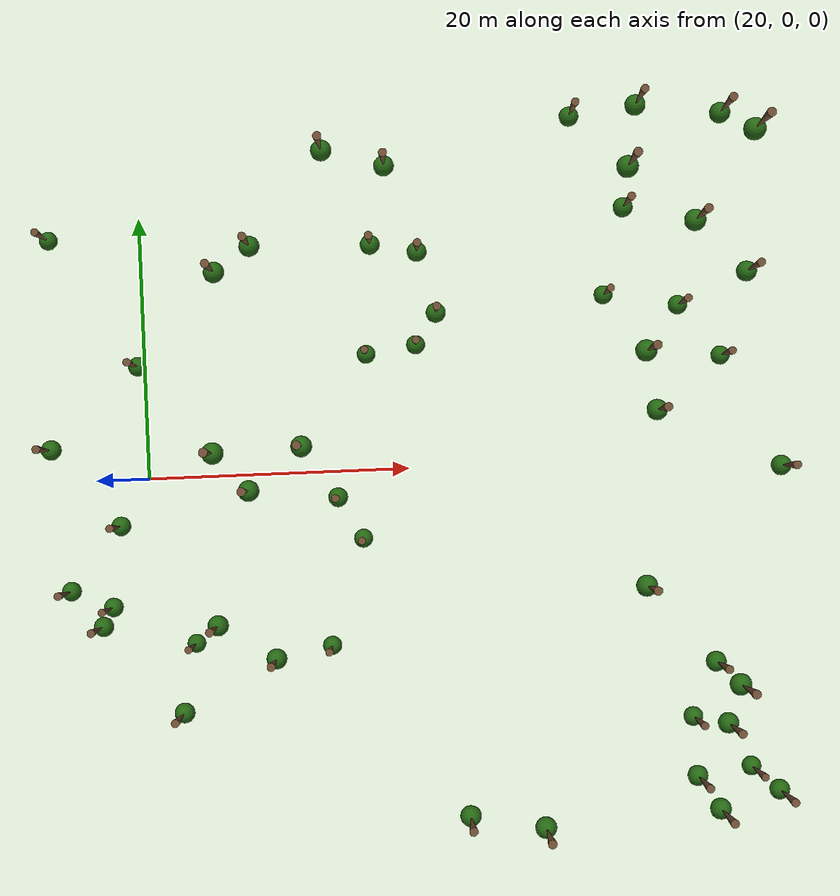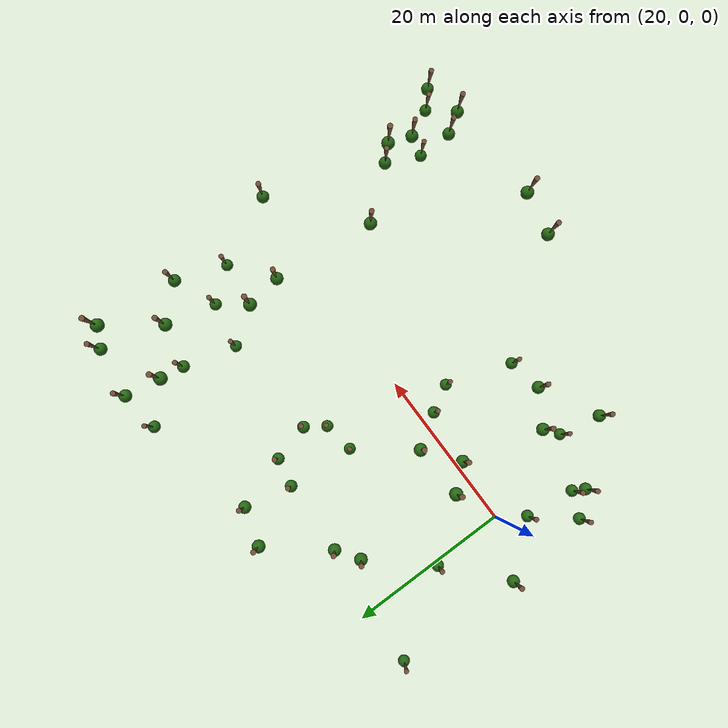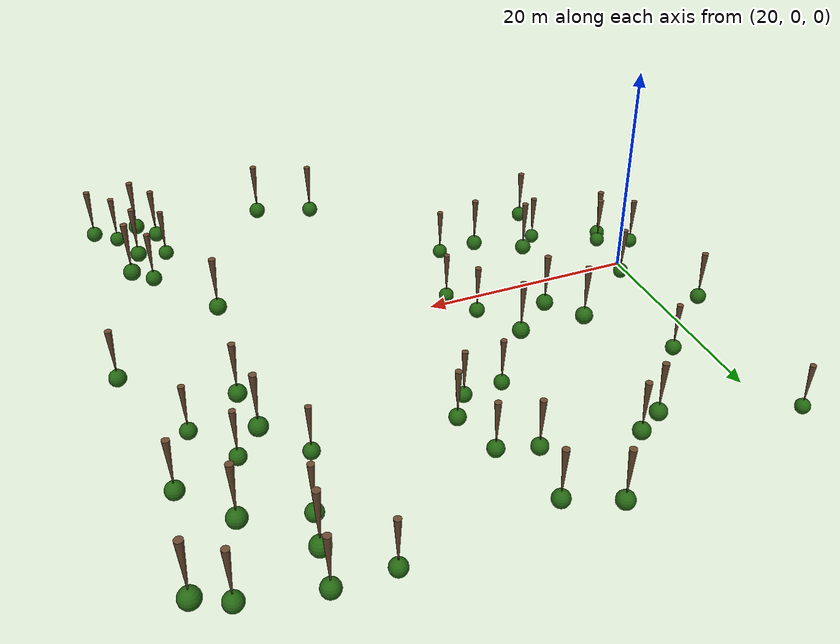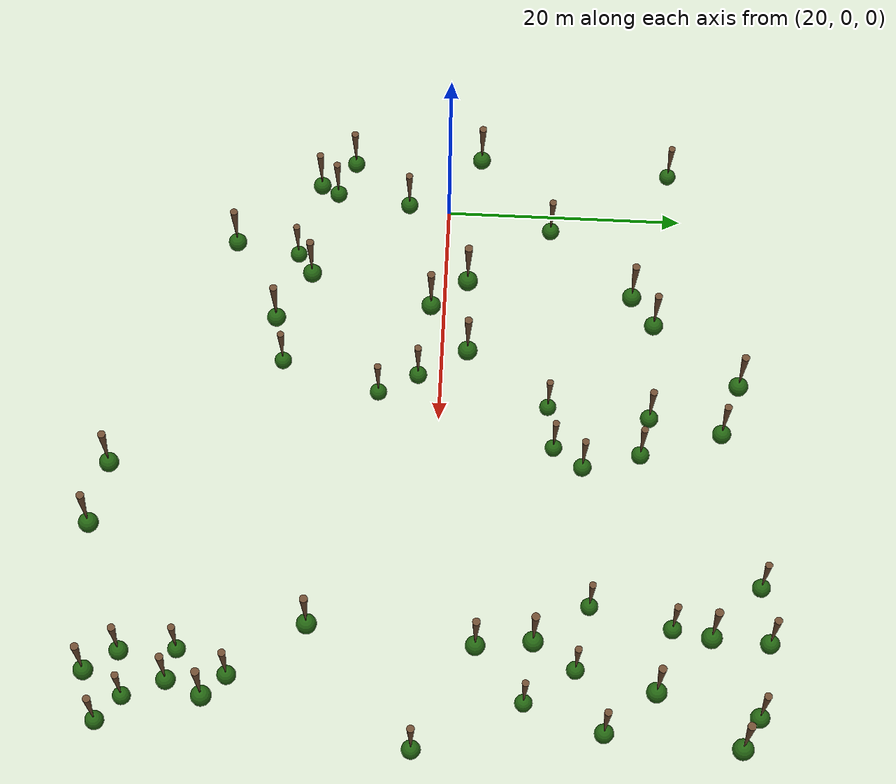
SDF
<sdf version="1.10">
 <model name="lehrforst_trees">
  <static>true</static>
  <link name="tree_0231">
   <visual name="tree_0231_trunk">
    <pose>24.409 1.859 -1.091 3.14159 0 0</pose>
    <geometry><cone><radius>0.352</radius><length>5.632</length></cone></geometry>
    <material>
     <ambient>0.42 0.29 0.19 1</ambient>
     <diffuse>0.42 0.29 0.19 1</diffuse>
     <specular>0.42 0.29 0.19 1</specular>
    </material>
   </visual>
   <visual name="tree_0231_leaves">
    <pose>24.409 1.859 -3.907 3.14159 0 0</pose>
    <geometry><sphere><radius>0.880</radius></sphere></geometry>
    <material>
     <ambient>0.14 0.40 0.07 1</ambient>
     <diffuse>0.14 0.40 0.07 1</diffuse>
     <specular>0.14 0.40 0.07 1</specular>
    </material>
   </visual>
   <collision name="tree_0231_collision">
    <pose>24.409 1.859 -1.091 3.14159 0 0</pose>
    <geometry><cone><radius>0.352</radius><length>5.632</length></cone></geometry>
   </collision>
  </link>
  <link name="tree_0234">
   <visual name="tree_0234_trunk">
    <pose>67.581 24.981 2.8 3.14159 0 0</pose>
    <geometry><cone><radius>0.348</radius><length>5.568</length></cone></geometry>
    <material>
     <ambient>0.42 0.29 0.19 1</ambient>
     <diffuse>0.42 0.29 0.19 1</diffuse>
     <specular>0.42 0.29 0.19 1</specular>
    </material>
   </visual>
   <visual name="tree_0234_leaves">
    <pose>67.581 24.981 0.016000000000000014 3.14159 0 0</pose>
    <geometry><sphere><radius>0.870</radius></sphere></geometry>
    <material>
     <ambient>0.14 0.40 0.07 1</ambient>
     <diffuse>0.14 0.40 0.07 1</diffuse>
     <specular>0.14 0.40 0.07 1</specular>
    </material>
   </visual>
   <collision name="tree_0234_collision">
    <pose>67.581 24.981 2.8 3.14159 0 0</pose>
    <geometry><cone><radius>0.348</radius><length>5.568</length></cone></geometry>
   </collision>
  </link>
  <link name="tree_0238">
   <visual name="tree_0238_trunk">
    <pose>57.901 22.753 1.447 3.14159 0 0</pose>
    <geometry><cone><radius>0.348</radius><length>5.568</length></cone></geometry>
    <material>
     <ambient>0.42 0.29 0.19 1</ambient>
     <diffuse>0.42 0.29 0.19 1</diffuse>
     <specular>0.42 0.29 0.19 1</specular>
    </material>
   </visual>
   <visual name="tree_0238_leaves">
    <pose>57.901 22.753 -1.3369999999999997 3.14159 0 0</pose>
    <geometry><sphere><radius>0.870</radius></sphere></geometry>
    <material>
     <ambient>0.14 0.40 0.07 1</ambient>
     <diffuse>0.14 0.40 0.07 1</diffuse>
     <specular>0.14 0.40 0.07 1</specular>
    </material>
   </visual>
   <collision name="tree_0238_collision">
    <pose>57.901 22.753 1.447 3.14159 0 0</pose>
    <geometry><cone><radius>0.348</radius><length>5.568</length></cone></geometry>
   </collision>
  </link>
  <link name="tree_0250">
   <visual name="tree_0250_trunk">
    <pose>58.799 8.423 1.165 3.14159 0 0</pose>
    <geometry><cone><radius>0.342</radius><length>5.472</length></cone></geometry>
    <material>
     <ambient>0.42 0.29 0.19 1</ambient>
     <diffuse>0.42 0.29 0.19 1</diffuse>
     <specular>0.42 0.29 0.19 1</specular>
    </material>
   </visual>
   <visual name="tree_0250_leaves">
    <pose>58.799 8.423 -1.5710000000000002 3.14159 0 0</pose>
    <geometry><sphere><radius>0.855</radius></sphere></geometry>
    <material>
     <ambient>0.14 0.40 0.07 1</ambient>
     <diffuse>0.14 0.40 0.07 1</diffuse>
     <specular>0.14 0.40 0.07 1</specular>
    </material>
   </visual>
   <collision name="tree_0250_collision">
    <pose>58.799 8.423 1.165 3.14159 0 0</pose>
    <geometry><cone><radius>0.342</radius><length>5.472</length></cone></geometry>
   </collision>
  </link>
  <link name="tree_0252">
   <visual name="tree_0252_trunk">
    <pose>49.555 -28.673 -0.0860000000000001 3.14159 0 0</pose>
    <geometry><cone><radius>0.342</radius><length>5.472</length></cone></geometry>
    <material>
     <ambient>0.42 0.29 0.19 1</ambient>
     <diffuse>0.42 0.29 0.19 1</diffuse>
     <specular>0.42 0.29 0.19 1</specular>
    </material>
   </visual>
   <visual name="tree_0252_leaves">
    <pose>49.555 -28.673 -2.8220000000000005 3.14159 0 0</pose>
    <geometry><sphere><radius>0.855</radius></sphere></geometry>
    <material>
     <ambient>0.14 0.40 0.07 1</ambient>
     <diffuse>0.14 0.40 0.07 1</diffuse>
     <specular>0.14 0.40 0.07 1</specular>
    </material>
   </visual>
   <collision name="tree_0252_collision">
    <pose>49.555 -28.673 -0.0860000000000001 3.14159 0 0</pose>
    <geometry><cone><radius>0.342</radius><length>5.472</length></cone></geometry>
   </collision>
  </link>
  <link name="tree_0253">
   <visual name="tree_0253_trunk">
    <pose>64.9 -17.749 1.922 3.14159 0 0</pose>
    <geometry><cone><radius>0.342</radius><length>5.472</length></cone></geometry>
    <material>
     <ambient>0.42 0.29 0.19 1</ambient>
     <diffuse>0.42 0.29 0.19 1</diffuse>
     <specular>0.42 0.29 0.19 1</specular>
    </material>
   </visual>
   <visual name="tree_0253_leaves">
    <pose>64.9 -17.749 -0.8140000000000003 3.14159 0 0</pose>
    <geometry><sphere><radius>0.855</radius></sphere></geometry>
    <material>
     <ambient>0.14 0.40 0.07 1</ambient>
     <diffuse>0.14 0.40 0.07 1</diffuse>
     <specular>0.14 0.40 0.07 1</specular>
    </material>
   </visual>
   <collision name="tree_0253_collision">
    <pose>64.9 -17.749 1.922 3.14159 0 0</pose>
    <geometry><cone><radius>0.342</radius><length>5.472</length></cone></geometry>
   </collision>
  </link>
  <link name="tree_0259">
   <visual name="tree_0259_trunk">
    <pose>31.504 2.118 -0.859 3.14159 0 0</pose>
    <geometry><cone><radius>0.340</radius><length>5.440</length></cone></geometry>
    <material>
     <ambient>0.42 0.29 0.19 1</ambient>
     <diffuse>0.42 0.29 0.19 1</diffuse>
     <specular>0.42 0.29 0.19 1</specular>
    </material>
   </visual>
   <visual name="tree_0259_leaves">
    <pose>31.504 2.118 -3.579 3.14159 0 0</pose>
    <geometry><sphere><radius>0.850</radius></sphere></geometry>
    <material>
     <ambient>0.14 0.40 0.07 1</ambient>
     <diffuse>0.14 0.40 0.07 1</diffuse>
     <specular>0.14 0.40 0.07 1</specular>
    </material>
   </visual>
   <collision name="tree_0259_collision">
    <pose>31.504 2.118 -0.859 3.14159 0 0</pose>
    <geometry><cone><radius>0.340</radius><length>5.440</length></cone></geometry>
   </collision>
  </link>
  <link name="tree_0262">
   <visual name="tree_0262_trunk">
    <pose>62.89 18.31 1.819 3.14159 0 0</pose>
    <geometry><cone><radius>0.338</radius><length>5.408</length></cone></geometry>
    <material>
     <ambient>0.42 0.29 0.19 1</ambient>
     <diffuse>0.42 0.29 0.19 1</diffuse>
     <specular>0.42 0.29 0.19 1</specular>
    </material>
   </visual>
   <visual name="tree_0262_leaves">
    <pose>62.89 18.31 -0.8850000000000002 3.14159 0 0</pose>
    <geometry><sphere><radius>0.845</radius></sphere></geometry>
    <material>
     <ambient>0.14 0.40 0.07 1</ambient>
     <diffuse>0.14 0.40 0.07 1</diffuse>
     <specular>0.14 0.40 0.07 1</specular>
    </material>
   </visual>
   <collision name="tree_0262_collision">
    <pose>62.89 18.31 1.819 3.14159 0 0</pose>
    <geometry><cone><radius>0.338</radius><length>5.408</length></cone></geometry>
   </collision>
  </link>
  <link name="tree_0263">
   <visual name="tree_0263_trunk">
    <pose>27.186 -1.236 -0.91 3.14159 0 0</pose>
    <geometry><cone><radius>0.338</radius><length>5.408</length></cone></geometry>
    <material>
     <ambient>0.42 0.29 0.19 1</ambient>
     <diffuse>0.42 0.29 0.19 1</diffuse>
     <specular>0.42 0.29 0.19 1</specular>
    </material>
   </visual>
   <visual name="tree_0263_leaves">
    <pose>27.186 -1.236 -3.6140000000000003 3.14159 0 0</pose>
    <geometry><sphere><radius>0.845</radius></sphere></geometry>
    <material>
     <ambient>0.14 0.40 0.07 1</ambient>
     <diffuse>0.14 0.40 0.07 1</diffuse>
     <specular>0.14 0.40 0.07 1</specular>
    </material>
   </visual>
   <collision name="tree_0263_collision">
    <pose>27.186 -1.236 -0.91 3.14159 0 0</pose>
    <geometry><cone><radius>0.338</radius><length>5.408</length></cone></geometry>
   </collision>
  </link>
  <link name="tree_0265">
   <visual name="tree_0265_trunk">
    <pose>58.102 -9.891 1.034 3.14159 0 0</pose>
    <geometry><cone><radius>0.338</radius><length>5.408</length></cone></geometry>
    <material>
     <ambient>0.42 0.29 0.19 1</ambient>
     <diffuse>0.42 0.29 0.19 1</diffuse>
     <specular>0.42 0.29 0.19 1</specular>
    </material>
   </visual>
   <visual name="tree_0265_leaves">
    <pose>58.102 -9.891 -1.6700000000000002 3.14159 0 0</pose>
    <geometry><sphere><radius>0.845</radius></sphere></geometry>
    <material>
     <ambient>0.14 0.40 0.07 1</ambient>
     <diffuse>0.14 0.40 0.07 1</diffuse>
     <specular>0.14 0.40 0.07 1</specular>
    </material>
   </visual>
   <collision name="tree_0265_collision">
    <pose>58.102 -9.891 1.034 3.14159 0 0</pose>
    <geometry><cone><radius>0.338</radius><length>5.408</length></cone></geometry>
   </collision>
  </link>
  <link name="tree_0270">
   <visual name="tree_0270_trunk">
    <pose>25.022 16.303 -1.87 3.14159 0 0</pose>
    <geometry><cone><radius>0.336</radius><length>5.376</length></cone></geometry>
    <material>
     <ambient>0.42 0.29 0.19 1</ambient>
     <diffuse>0.42 0.29 0.19 1</diffuse>
     <specular>0.42 0.29 0.19 1</specular>
    </material>
   </visual>
   <visual name="tree_0270_leaves">
    <pose>25.022 16.303 -4.558 3.14159 0 0</pose>
    <geometry><sphere><radius>0.840</radius></sphere></geometry>
    <material>
     <ambient>0.14 0.40 0.07 1</ambient>
     <diffuse>0.14 0.40 0.07 1</diffuse>
     <specular>0.14 0.40 0.07 1</specular>
    </material>
   </visual>
   <collision name="tree_0270_collision">
    <pose>25.022 16.303 -1.87 3.14159 0 0</pose>
    <geometry><cone><radius>0.336</radius><length>5.376</length></cone></geometry>
   </collision>
  </link>
  <link name="tree_0271">
   <visual name="tree_0271_trunk">
    <pose>43.701 -27.643 -0.687 3.14159 0 0</pose>
    <geometry><cone><radius>0.336</radius><length>5.376</length></cone></geometry>
    <material>
     <ambient>0.42 0.29 0.19 1</ambient>
     <diffuse>0.42 0.29 0.19 1</diffuse>
     <specular>0.42 0.29 0.19 1</specular>
    </material>
   </visual>
   <visual name="tree_0271_leaves">
    <pose>43.701 -27.643 -3.375 3.14159 0 0</pose>
    <geometry><sphere><radius>0.840</radius></sphere></geometry>
    <material>
     <ambient>0.14 0.40 0.07 1</ambient>
     <diffuse>0.14 0.40 0.07 1</diffuse>
     <specular>0.14 0.40 0.07 1</specular>
    </material>
   </visual>
   <collision name="tree_0271_collision">
    <pose>43.701 -27.643 -0.687 3.14159 0 0</pose>
    <geometry><cone><radius>0.336</radius><length>5.376</length></cone></geometry>
   </collision>
  </link>
  <link name="tree_0273">
   <visual name="tree_0273_trunk">
    <pose>34.035 25.412 -0.66 3.14159 0 0</pose>
    <geometry><cone><radius>0.334</radius><length>5.344</length></cone></geometry>
    <material>
     <ambient>0.42 0.29 0.19 1</ambient>
     <diffuse>0.42 0.29 0.19 1</diffuse>
     <specular>0.42 0.29 0.19 1</specular>
    </material>
   </visual>
   <visual name="tree_0273_leaves">
    <pose>34.035 25.412 -3.3320000000000003 3.14159 0 0</pose>
    <geometry><sphere><radius>0.835</radius></sphere></geometry>
    <material>
     <ambient>0.14 0.40 0.07 1</ambient>
     <diffuse>0.14 0.40 0.07 1</diffuse>
     <specular>0.14 0.40 0.07 1</specular>
    </material>
   </visual>
   <collision name="tree_0273_collision">
    <pose>34.035 25.412 -0.66 3.14159 0 0</pose>
    <geometry><cone><radius>0.334</radius><length>5.344</length></cone></geometry>
   </collision>
  </link>
  <link name="tree_0275">
   <visual name="tree_0275_trunk">
    <pose>24.317 -11.821 -1.164 3.14159 0 0</pose>
    <geometry><cone><radius>0.332</radius><length>5.312</length></cone></geometry>
    <material>
     <ambient>0.42 0.29 0.19 1</ambient>
     <diffuse>0.42 0.29 0.19 1</diffuse>
     <specular>0.42 0.29 0.19 1</specular>
    </material>
   </visual>
   <visual name="tree_0275_leaves">
    <pose>24.317 -11.821 -3.8200000000000003 3.14159 0 0</pose>
    <geometry><sphere><radius>0.830</radius></sphere></geometry>
    <material>
     <ambient>0.14 0.40 0.07 1</ambient>
     <diffuse>0.14 0.40 0.07 1</diffuse>
     <specular>0.14 0.40 0.07 1</specular>
    </material>
   </visual>
   <collision name="tree_0275_collision">
    <pose>24.317 -11.821 -1.164 3.14159 0 0</pose>
    <geometry><cone><radius>0.332</radius><length>5.312</length></cone></geometry>
   </collision>
  </link>
  <link name="tree_0281">
   <visual name="tree_0281_trunk">
    <pose>27.969 18.211 -1.557 3.14159 0 0</pose>
    <geometry><cone><radius>0.330</radius><length>5.280</length></cone></geometry>
    <material>
     <ambient>0.42 0.29 0.19 1</ambient>
     <diffuse>0.42 0.29 0.19 1</diffuse>
     <specular>0.42 0.29 0.19 1</specular>
    </material>
   </visual>
   <visual name="tree_0281_leaves">
    <pose>27.969 18.211 -4.197 3.14159 0 0</pose>
    <geometry><sphere><radius>0.825</radius></sphere></geometry>
    <material>
     <ambient>0.14 0.40 0.07 1</ambient>
     <diffuse>0.14 0.40 0.07 1</diffuse>
     <specular>0.14 0.40 0.07 1</specular>
    </material>
   </visual>
   <collision name="tree_0281_collision">
    <pose>27.969 18.211 -1.557 3.14159 0 0</pose>
    <geometry><cone><radius>0.330</radius><length>5.280</length></cone></geometry>
   </collision>
  </link>
  <link name="tree_0286">
   <visual name="tree_0286_trunk">
    <pose>63.034 -27.394 1.361 3.14159 0 0</pose>
    <geometry><cone><radius>0.328</radius><length>5.248</length></cone></geometry>
    <material>
     <ambient>0.42 0.29 0.19 1</ambient>
     <diffuse>0.42 0.29 0.19 1</diffuse>
     <specular>0.42 0.29 0.19 1</specular>
    </material>
   </visual>
   <visual name="tree_0286_leaves">
    <pose>63.034 -27.394 -1.2630000000000001 3.14159 0 0</pose>
    <geometry><sphere><radius>0.820</radius></sphere></geometry>
    <material>
     <ambient>0.14 0.40 0.07 1</ambient>
     <diffuse>0.14 0.40 0.07 1</diffuse>
     <specular>0.14 0.40 0.07 1</specular>
    </material>
   </visual>
   <collision name="tree_0286_collision">
    <pose>63.034 -27.394 1.361 3.14159 0 0</pose>
    <geometry><cone><radius>0.328</radius><length>5.248</length></cone></geometry>
   </collision>
  </link>
  <link name="tree_0291">
   <visual name="tree_0291_trunk">
    <pose>59.422 3.784 1.213 3.14159 0 0</pose>
    <geometry><cone><radius>0.328</radius><length>5.248</length></cone></geometry>
    <material>
     <ambient>0.42 0.29 0.19 1</ambient>
     <diffuse>0.42 0.29 0.19 1</diffuse>
     <specular>0.42 0.29 0.19 1</specular>
    </material>
   </visual>
   <visual name="tree_0291_leaves">
    <pose>59.422 3.784 -1.411 3.14159 0 0</pose>
    <geometry><sphere><radius>0.820</radius></sphere></geometry>
    <material>
     <ambient>0.14 0.40 0.07 1</ambient>
     <diffuse>0.14 0.40 0.07 1</diffuse>
     <specular>0.14 0.40 0.07 1</specular>
    </material>
   </visual>
   <collision name="tree_0291_collision">
    <pose>59.422 3.784 1.213 3.14159 0 0</pose>
    <geometry><cone><radius>0.328</radius><length>5.248</length></cone></geometry>
   </collision>
  </link>
  <link name="tree_0296">
   <visual name="tree_0296_trunk">
    <pose>28.853 -14.649 -1.272 3.14159 0 0</pose>
    <geometry><cone><radius>0.326</radius><length>5.216</length></cone></geometry>
    <material>
     <ambient>0.42 0.29 0.19 1</ambient>
     <diffuse>0.42 0.29 0.19 1</diffuse>
     <specular>0.42 0.29 0.19 1</specular>
    </material>
   </visual>
   <visual name="tree_0296_leaves">
    <pose>28.853 -14.649 -3.88 3.14159 0 0</pose>
    <geometry><sphere><radius>0.815</radius></sphere></geometry>
    <material>
     <ambient>0.14 0.40 0.07 1</ambient>
     <diffuse>0.14 0.40 0.07 1</diffuse>
     <specular>0.14 0.40 0.07 1</specular>
    </material>
   </visual>
   <collision name="tree_0296_collision">
    <pose>28.853 -14.649 -1.272 3.14159 0 0</pose>
    <geometry><cone><radius>0.326</radius><length>5.216</length></cone></geometry>
   </collision>
  </link>
  <link name="tree_0304">
   <visual name="tree_0304_trunk">
    <pose>63.774 -20.646 1.965 3.14159 0 0</pose>
    <geometry><cone><radius>0.322</radius><length>5.152</length></cone></geometry>
    <material>
     <ambient>0.42 0.29 0.19 1</ambient>
     <diffuse>0.42 0.29 0.19 1</diffuse>
     <specular>0.42 0.29 0.19 1</specular>
    </material>
   </visual>
   <visual name="tree_0304_leaves">
    <pose>63.774 -20.646 -0.611 3.14159 0 0</pose>
    <geometry><sphere><radius>0.805</radius></sphere></geometry>
    <material>
     <ambient>0.14 0.40 0.07 1</ambient>
     <diffuse>0.14 0.40 0.07 1</diffuse>
     <specular>0.14 0.40 0.07 1</specular>
    </material>
   </visual>
   <collision name="tree_0304_collision">
    <pose>63.774 -20.646 1.965 3.14159 0 0</pose>
    <geometry><cone><radius>0.322</radius><length>5.152</length></cone></geometry>
   </collision>
  </link>
  <link name="tree_0306">
   <visual name="tree_0306_trunk">
    <pose>38.941 23.874 -0.191 3.14159 0 0</pose>
    <geometry><cone><radius>0.322</radius><length>5.152</length></cone></geometry>
    <material>
     <ambient>0.42 0.29 0.19 1</ambient>
     <diffuse>0.42 0.29 0.19 1</diffuse>
     <specular>0.42 0.29 0.19 1</specular>
    </material>
   </visual>
   <visual name="tree_0306_leaves">
    <pose>38.941 23.874 -2.767 3.14159 0 0</pose>
    <geometry><sphere><radius>0.805</radius></sphere></geometry>
    <material>
     <ambient>0.14 0.40 0.07 1</ambient>
     <diffuse>0.14 0.40 0.07 1</diffuse>
     <specular>0.14 0.40 0.07 1</specular>
    </material>
   </visual>
   <collision name="tree_0306_collision">
    <pose>38.941 23.874 -0.191 3.14159 0 0</pose>
    <geometry><cone><radius>0.322</radius><length>5.152</length></cone></geometry>
   </collision>
  </link>
  <link name="tree_0307">
   <visual name="tree_0307_trunk">
    <pose>21.382 -18.65 -1.42 3.14159 0 0</pose>
    <geometry><cone><radius>0.322</radius><length>5.152</length></cone></geometry>
    <material>
     <ambient>0.42 0.29 0.19 1</ambient>
     <diffuse>0.42 0.29 0.19 1</diffuse>
     <specular>0.42 0.29 0.19 1</specular>
    </material>
   </visual>
   <visual name="tree_0307_leaves">
    <pose>21.382 -18.65 -3.996 3.14159 0 0</pose>
    <geometry><sphere><radius>0.805</radius></sphere></geometry>
    <material>
     <ambient>0.14 0.40 0.07 1</ambient>
     <diffuse>0.14 0.40 0.07 1</diffuse>
     <specular>0.14 0.40 0.07 1</specular>
    </material>
   </visual>
   <collision name="tree_0307_collision">
    <pose>21.382 -18.65 -1.42 3.14159 0 0</pose>
    <geometry><cone><radius>0.322</radius><length>5.152</length></cone></geometry>
   </collision>
  </link>
  <link name="tree_0308">
   <visual name="tree_0308_trunk">
    <pose>58.53 27.305 2.078 3.14159 0 0</pose>
    <geometry><cone><radius>0.320</radius><length>5.120</length></cone></geometry>
    <material>
     <ambient>0.42 0.29 0.19 1</ambient>
     <diffuse>0.42 0.29 0.19 1</diffuse>
     <specular>0.42 0.29 0.19 1</specular>
    </material>
   </visual>
   <visual name="tree_0308_leaves">
    <pose>58.53 27.305 -0.4820000000000002 3.14159 0 0</pose>
    <geometry><sphere><radius>0.800</radius></sphere></geometry>
    <material>
     <ambient>0.14 0.40 0.07 1</ambient>
     <diffuse>0.14 0.40 0.07 1</diffuse>
     <specular>0.14 0.40 0.07 1</specular>
    </material>
   </visual>
   <collision name="tree_0308_collision">
    <pose>58.53 27.305 2.078 3.14159 0 0</pose>
    <geometry><cone><radius>0.320</radius><length>5.120</length></cone></geometry>
   </collision>
  </link>
  <link name="tree_0311">
   <visual name="tree_0311_trunk">
    <pose>11.542 2.646 -1.834 3.14159 0 0</pose>
    <geometry><cone><radius>0.320</radius><length>5.120</length></cone></geometry>
    <material>
     <ambient>0.42 0.29 0.19 1</ambient>
     <diffuse>0.42 0.29 0.19 1</diffuse>
     <specular>0.42 0.29 0.19 1</specular>
    </material>
   </visual>
   <visual name="tree_0311_leaves">
    <pose>11.542 2.646 -4.394 3.14159 0 0</pose>
    <geometry><sphere><radius>0.800</radius></sphere></geometry>
    <material>
     <ambient>0.14 0.40 0.07 1</ambient>
     <diffuse>0.14 0.40 0.07 1</diffuse>
     <specular>0.14 0.40 0.07 1</specular>
    </material>
   </visual>
   <collision name="tree_0311_collision">
    <pose>11.542 2.646 -1.834 3.14159 0 0</pose>
    <geometry><cone><radius>0.320</radius><length>5.120</length></cone></geometry>
   </collision>
  </link>
  <link name="tree_0312">
   <visual name="tree_0312_trunk">
    <pose>64.942 26.337 2.516 3.14159 0 0</pose>
    <geometry><cone><radius>0.318</radius><length>5.088</length></cone></geometry>
    <material>
     <ambient>0.42 0.29 0.19 1</ambient>
     <diffuse>0.42 0.29 0.19 1</diffuse>
     <specular>0.42 0.29 0.19 1</specular>
    </material>
   </visual>
   <visual name="tree_0312_leaves">
    <pose>64.942 26.337 -0.028000000000000025 3.14159 0 0</pose>
    <geometry><sphere><radius>0.795</radius></sphere></geometry>
    <material>
     <ambient>0.14 0.40 0.07 1</ambient>
     <diffuse>0.14 0.40 0.07 1</diffuse>
     <specular>0.14 0.40 0.07 1</specular>
    </material>
   </visual>
   <collision name="tree_0312_collision">
    <pose>64.942 26.337 2.516 3.14159 0 0</pose>
    <geometry><cone><radius>0.318</radius><length>5.088</length></cone></geometry>
   </collision>
  </link>
  <link name="tree_0316">
   <visual name="tree_0316_trunk">
    <pose>61.328 -24.705 1.452 3.14159 0 0</pose>
    <geometry><cone><radius>0.316</radius><length>5.056</length></cone></geometry>
    <material>
     <ambient>0.42 0.29 0.19 1</ambient>
     <diffuse>0.42 0.29 0.19 1</diffuse>
     <specular>0.42 0.29 0.19 1</specular>
    </material>
   </visual>
   <visual name="tree_0316_leaves">
    <pose>61.328 -24.705 -1.076 3.14159 0 0</pose>
    <geometry><sphere><radius>0.790</radius></sphere></geometry>
    <material>
     <ambient>0.14 0.40 0.07 1</ambient>
     <diffuse>0.14 0.40 0.07 1</diffuse>
     <specular>0.14 0.40 0.07 1</specular>
    </material>
   </visual>
   <collision name="tree_0316_collision">
    <pose>61.328 -24.705 1.452 3.14159 0 0</pose>
    <geometry><cone><radius>0.316</radius><length>5.056</length></cone></geometry>
   </collision>
  </link>
  <link name="tree_0320">
   <visual name="tree_0320_trunk">
    <pose>66.608 14.157 1.961 3.14159 0 0</pose>
    <geometry><cone><radius>0.316</radius><length>5.056</length></cone></geometry>
    <material>
     <ambient>0.42 0.29 0.19 1</ambient>
     <diffuse>0.42 0.29 0.19 1</diffuse>
     <specular>0.42 0.29 0.19 1</specular>
    </material>
   </visual>
   <visual name="tree_0320_leaves">
    <pose>66.608 14.157 -0.567 3.14159 0 0</pose>
    <geometry><sphere><radius>0.790</radius></sphere></geometry>
    <material>
     <ambient>0.14 0.40 0.07 1</ambient>
     <diffuse>0.14 0.40 0.07 1</diffuse>
     <specular>0.14 0.40 0.07 1</specular>
    </material>
   </visual>
   <collision name="tree_0320_collision">
    <pose>66.608 14.157 1.961 3.14159 0 0</pose>
    <geometry><cone><radius>0.316</radius><length>5.056</length></cone></geometry>
   </collision>
  </link>
  <link name="tree_0325">
   <visual name="tree_0325_trunk">
    <pose>15.254 -11.534 -1.339 3.14159 0 0</pose>
    <geometry><cone><radius>0.314</radius><length>5.024</length></cone></geometry>
    <material>
     <ambient>0.42 0.29 0.19 1</ambient>
     <diffuse>0.42 0.29 0.19 1</diffuse>
     <specular>0.42 0.29 0.19 1</specular>
    </material>
   </visual>
   <visual name="tree_0325_leaves">
    <pose>15.254 -11.534 -3.851 3.14159 0 0</pose>
    <geometry><sphere><radius>0.785</radius></sphere></geometry>
    <material>
     <ambient>0.14 0.40 0.07 1</ambient>
     <diffuse>0.14 0.40 0.07 1</diffuse>
     <specular>0.14 0.40 0.07 1</specular>
    </material>
   </visual>
   <collision name="tree_0325_collision">
    <pose>15.254 -11.534 -1.339 3.14159 0 0</pose>
    <geometry><cone><radius>0.314</radius><length>5.024</length></cone></geometry>
   </collision>
  </link>
  <link name="tree_0326">
   <visual name="tree_0326_trunk">
    <pose>63.068 -15.884 1.667 3.14159 0 0</pose>
    <geometry><cone><radius>0.314</radius><length>5.024</length></cone></geometry>
    <material>
     <ambient>0.42 0.29 0.19 1</ambient>
     <diffuse>0.42 0.29 0.19 1</diffuse>
     <specular>0.42 0.29 0.19 1</specular>
    </material>
   </visual>
   <visual name="tree_0326_leaves">
    <pose>63.068 -15.884 -0.845 3.14159 0 0</pose>
    <geometry><sphere><radius>0.785</radius></sphere></geometry>
    <material>
     <ambient>0.14 0.40 0.07 1</ambient>
     <diffuse>0.14 0.40 0.07 1</diffuse>
     <specular>0.14 0.40 0.07 1</specular>
    </material>
   </visual>
   <collision name="tree_0326_collision">
    <pose>63.068 -15.884 1.667 3.14159 0 0</pose>
    <geometry><cone><radius>0.314</radius><length>5.024</length></cone></geometry>
   </collision>
  </link>
  <link name="tree_0334">
   <visual name="tree_0334_trunk">
    <pose>68.649 -0.917 1.975 3.14159 0 0</pose>
    <geometry><cone><radius>0.312</radius><length>4.992</length></cone></geometry>
    <material>
     <ambient>0.42 0.29 0.19 1</ambient>
     <diffuse>0.42 0.29 0.19 1</diffuse>
     <specular>0.42 0.29 0.19 1</specular>
    </material>
   </visual>
   <visual name="tree_0334_leaves">
    <pose>68.649 -0.917 -0.5209999999999999 3.14159 0 0</pose>
    <geometry><sphere><radius>0.780</radius></sphere></geometry>
    <material>
     <ambient>0.14 0.40 0.07 1</ambient>
     <diffuse>0.14 0.40 0.07 1</diffuse>
     <specular>0.14 0.40 0.07 1</specular>
    </material>
   </visual>
   <collision name="tree_0334_collision">
    <pose>68.649 -0.917 1.975 3.14159 0 0</pose>
    <geometry><cone><radius>0.312</radius><length>4.992</length></cone></geometry>
   </collision>
  </link>
  <link name="tree_0338">
   <visual name="tree_0338_trunk">
    <pose>37.598 17.767 -0.576 3.14159 0 0</pose>
    <geometry><cone><radius>0.310</radius><length>4.960</length></cone></geometry>
    <material>
     <ambient>0.42 0.29 0.19 1</ambient>
     <diffuse>0.42 0.29 0.19 1</diffuse>
     <specular>0.42 0.29 0.19 1</specular>
    </material>
   </visual>
   <visual name="tree_0338_leaves">
    <pose>37.598 17.767 -3.056 3.14159 0 0</pose>
    <geometry><sphere><radius>0.775</radius></sphere></geometry>
    <material>
     <ambient>0.14 0.40 0.07 1</ambient>
     <diffuse>0.14 0.40 0.07 1</diffuse>
     <specular>0.14 0.40 0.07 1</specular>
    </material>
   </visual>
   <collision name="tree_0338_collision">
    <pose>37.598 17.767 -0.576 3.14159 0 0</pose>
    <geometry><cone><radius>0.310</radius><length>4.960</length></cone></geometry>
   </collision>
  </link>
  <link name="tree_0339">
   <visual name="tree_0339_trunk">
    <pose>42.559 12.171 -0.319 3.14159 0 0</pose>
    <geometry><cone><radius>0.310</radius><length>4.960</length></cone></geometry>
    <material>
     <ambient>0.42 0.29 0.19 1</ambient>
     <diffuse>0.42 0.29 0.19 1</diffuse>
     <specular>0.42 0.29 0.19 1</specular>
    </material>
   </visual>
   <visual name="tree_0339_leaves">
    <pose>42.559 12.171 -2.799 3.14159 0 0</pose>
    <geometry><sphere><radius>0.775</radius></sphere></geometry>
    <material>
     <ambient>0.14 0.40 0.07 1</ambient>
     <diffuse>0.14 0.40 0.07 1</diffuse>
     <specular>0.14 0.40 0.07 1</specular>
    </material>
   </visual>
   <collision name="tree_0339_collision">
    <pose>42.559 12.171 -0.319 3.14159 0 0</pose>
    <geometry><cone><radius>0.310</radius><length>4.960</length></cone></geometry>
   </collision>
  </link>
  <link name="tree_0342">
   <visual name="tree_0342_trunk">
    <pose>67.457 -25.881 2.075 3.14159 0 0</pose>
    <geometry><cone><radius>0.310</radius><length>4.960</length></cone></geometry>
    <material>
     <ambient>0.42 0.29 0.19 1</ambient>
     <diffuse>0.42 0.29 0.19 1</diffuse>
     <specular>0.42 0.29 0.19 1</specular>
    </material>
   </visual>
   <visual name="tree_0342_leaves">
    <pose>67.457 -25.881 -0.4049999999999998 3.14159 0 0</pose>
    <geometry><sphere><radius>0.775</radius></sphere></geometry>
    <material>
     <ambient>0.14 0.40 0.07 1</ambient>
     <diffuse>0.14 0.40 0.07 1</diffuse>
     <specular>0.14 0.40 0.07 1</specular>
    </material>
   </visual>
   <collision name="tree_0342_collision">
    <pose>67.457 -25.881 2.075 3.14159 0 0</pose>
    <geometry><cone><radius>0.310</radius><length>4.960</length></cone></geometry>
   </collision>
  </link>
  <link name="tree_0343">
   <visual name="tree_0343_trunk">
    <pose>41.262 17.009 -0.214 3.14159 0 0</pose>
    <geometry><cone><radius>0.308</radius><length>4.928</length></cone></geometry>
    <material>
     <ambient>0.42 0.29 0.19 1</ambient>
     <diffuse>0.42 0.29 0.19 1</diffuse>
     <specular>0.42 0.29 0.19 1</specular>
    </material>
   </visual>
   <visual name="tree_0343_leaves">
    <pose>41.262 17.009 -2.678 3.14159 0 0</pose>
    <geometry><sphere><radius>0.770</radius></sphere></geometry>
    <material>
     <ambient>0.14 0.40 0.07 1</ambient>
     <diffuse>0.14 0.40 0.07 1</diffuse>
     <specular>0.14 0.40 0.07 1</specular>
    </material>
   </visual>
   <collision name="tree_0343_collision">
    <pose>41.262 17.009 -0.214 3.14159 0 0</pose>
    <geometry><cone><radius>0.308</radius><length>4.928</length></cone></geometry>
   </collision>
  </link>
  <link name="tree_0347">
   <visual name="tree_0347_trunk">
    <pose>34.279 -2.021 -0.739 3.14159 0 0</pose>
    <geometry><cone><radius>0.306</radius><length>4.896</length></cone></geometry>
    <material>
     <ambient>0.42 0.29 0.19 1</ambient>
     <diffuse>0.42 0.29 0.19 1</diffuse>
     <specular>0.42 0.29 0.19 1</specular>
    </material>
   </visual>
   <visual name="tree_0347_leaves">
    <pose>34.279 -2.021 -3.187 3.14159 0 0</pose>
    <geometry><sphere><radius>0.765</radius></sphere></geometry>
    <material>
     <ambient>0.14 0.40 0.07 1</ambient>
     <diffuse>0.14 0.40 0.07 1</diffuse>
     <specular>0.14 0.40 0.07 1</specular>
    </material>
   </visual>
   <collision name="tree_0347_collision">
    <pose>34.279 -2.021 -0.739 3.14159 0 0</pose>
    <geometry><cone><radius>0.306</radius><length>4.896</length></cone></geometry>
   </collision>
  </link>
  <link name="tree_0348">
   <visual name="tree_0348_trunk">
    <pose>57.364 19.585 1.217 3.14159 0 0</pose>
    <geometry><cone><radius>0.306</radius><length>4.896</length></cone></geometry>
    <material>
     <ambient>0.42 0.29 0.19 1</ambient>
     <diffuse>0.42 0.29 0.19 1</diffuse>
     <specular>0.42 0.29 0.19 1</specular>
    </material>
   </visual>
   <visual name="tree_0348_leaves">
    <pose>57.364 19.585 -1.2309999999999999 3.14159 0 0</pose>
    <geometry><sphere><radius>0.765</radius></sphere></geometry>
    <material>
     <ambient>0.14 0.40 0.07 1</ambient>
     <diffuse>0.14 0.40 0.07 1</diffuse>
     <specular>0.14 0.40 0.07 1</specular>
    </material>
   </visual>
   <collision name="tree_0348_collision">
    <pose>57.364 19.585 1.217 3.14159 0 0</pose>
    <geometry><cone><radius>0.306</radius><length>4.896</length></cone></geometry>
   </collision>
  </link>
  <link name="tree_0349">
   <visual name="tree_0349_trunk">
    <pose>16.989 -3.622 -1.29 3.14159 0 0</pose>
    <geometry><cone><radius>0.306</radius><length>4.896</length></cone></geometry>
    <material>
     <ambient>0.42 0.29 0.19 1</ambient>
     <diffuse>0.42 0.29 0.19 1</diffuse>
     <specular>0.42 0.29 0.19 1</specular>
    </material>
   </visual>
   <visual name="tree_0349_leaves">
    <pose>16.989 -3.622 -3.738 3.14159 0 0</pose>
    <geometry><sphere><radius>0.765</radius></sphere></geometry>
    <material>
     <ambient>0.14 0.40 0.07 1</ambient>
     <diffuse>0.14 0.40 0.07 1</diffuse>
     <specular>0.14 0.40 0.07 1</specular>
    </material>
   </visual>
   <collision name="tree_0349_collision">
    <pose>16.989 -3.622 -1.29 3.14159 0 0</pose>
    <geometry><cone><radius>0.306</radius><length>4.896</length></cone></geometry>
   </collision>
  </link>
  <link name="tree_0351">
   <visual name="tree_0351_trunk">
    <pose>18.712 9.028 -1.942 3.14159 0 0</pose>
    <geometry><cone><radius>0.306</radius><length>4.896</length></cone></geometry>
    <material>
     <ambient>0.42 0.29 0.19 1</ambient>
     <diffuse>0.42 0.29 0.19 1</diffuse>
     <specular>0.42 0.29 0.19 1</specular>
    </material>
   </visual>
   <visual name="tree_0351_leaves">
    <pose>18.712 9.028 -4.39 3.14159 0 0</pose>
    <geometry><sphere><radius>0.765</radius></sphere></geometry>
    <material>
     <ambient>0.14 0.40 0.07 1</ambient>
     <diffuse>0.14 0.40 0.07 1</diffuse>
     <specular>0.14 0.40 0.07 1</specular>
    </material>
   </visual>
   <collision name="tree_0351_collision">
    <pose>18.712 9.028 -1.942 3.14159 0 0</pose>
    <geometry><cone><radius>0.306</radius><length>4.896</length></cone></geometry>
   </collision>
  </link>
  <link name="tree_0352">
   <visual name="tree_0352_trunk">
    <pose>12.844 -8.626 -1.358 3.14159 0 0</pose>
    <geometry><cone><radius>0.306</radius><length>4.896</length></cone></geometry>
    <material>
     <ambient>0.42 0.29 0.19 1</ambient>
     <diffuse>0.42 0.29 0.19 1</diffuse>
     <specular>0.42 0.29 0.19 1</specular>
    </material>
   </visual>
   <visual name="tree_0352_leaves">
    <pose>12.844 -8.626 -3.806 3.14159 0 0</pose>
    <geometry><sphere><radius>0.765</radius></sphere></geometry>
    <material>
     <ambient>0.14 0.40 0.07 1</ambient>
     <diffuse>0.14 0.40 0.07 1</diffuse>
     <specular>0.14 0.40 0.07 1</specular>
    </material>
   </visual>
   <collision name="tree_0352_collision">
    <pose>12.844 -8.626 -1.358 3.14159 0 0</pose>
    <geometry><cone><radius>0.306</radius><length>4.896</length></cone></geometry>
   </collision>
  </link>
  <link name="tree_0359">
   <visual name="tree_0359_trunk">
    <pose>16.137 -10.009 -1.289 3.14159 0 0</pose>
    <geometry><cone><radius>0.304</radius><length>4.864</length></cone></geometry>
    <material>
     <ambient>0.42 0.29 0.19 1</ambient>
     <diffuse>0.42 0.29 0.19 1</diffuse>
     <specular>0.42 0.29 0.19 1</specular>
    </material>
   </visual>
   <visual name="tree_0359_leaves">
    <pose>16.137 -10.009 -3.721 3.14159 0 0</pose>
    <geometry><sphere><radius>0.760</radius></sphere></geometry>
    <material>
     <ambient>0.14 0.40 0.07 1</ambient>
     <diffuse>0.14 0.40 0.07 1</diffuse>
     <specular>0.14 0.40 0.07 1</specular>
    </material>
   </visual>
   <collision name="tree_0359_collision">
    <pose>16.137 -10.009 -1.289 3.14159 0 0</pose>
    <geometry><cone><radius>0.304</radius><length>4.864</length></cone></geometry>
   </collision>
  </link>
  <link name="tree_0361">
   <visual name="tree_0361_trunk">
    <pose>53.452 26.778 1.245 3.14159 0 0</pose>
    <geometry><cone><radius>0.302</radius><length>4.832</length></cone></geometry>
    <material>
     <ambient>0.42 0.29 0.19 1</ambient>
     <diffuse>0.42 0.29 0.19 1</diffuse>
     <specular>0.42 0.29 0.19 1</specular>
    </material>
   </visual>
   <visual name="tree_0361_leaves">
    <pose>53.452 26.778 -1.1709999999999998 3.14159 0 0</pose>
    <geometry><sphere><radius>0.755</radius></sphere></geometry>
    <material>
     <ambient>0.14 0.40 0.07 1</ambient>
     <diffuse>0.14 0.40 0.07 1</diffuse>
     <specular>0.14 0.40 0.07 1</specular>
    </material>
   </visual>
   <collision name="tree_0361_collision">
    <pose>53.452 26.778 1.245 3.14159 0 0</pose>
    <geometry><cone><radius>0.302</radius><length>4.832</length></cone></geometry>
   </collision>
  </link>
  <link name="tree_0364">
   <visual name="tree_0364_trunk">
    <pose>33.336 -13.698 -0.994 3.14159 0 0</pose>
    <geometry><cone><radius>0.298</radius><length>4.768</length></cone></geometry>
    <material>
     <ambient>0.42 0.29 0.19 1</ambient>
     <diffuse>0.42 0.29 0.19 1</diffuse>
     <specular>0.42 0.29 0.19 1</specular>
    </material>
   </visual>
   <visual name="tree_0364_leaves">
    <pose>33.336 -13.698 -3.378 3.14159 0 0</pose>
    <geometry><sphere><radius>0.745</radius></sphere></geometry>
    <material>
     <ambient>0.14 0.40 0.07 1</ambient>
     <diffuse>0.14 0.40 0.07 1</diffuse>
     <specular>0.14 0.40 0.07 1</specular>
    </material>
   </visual>
   <collision name="tree_0364_collision">
    <pose>33.336 -13.698 -0.994 3.14159 0 0</pose>
    <geometry><cone><radius>0.298</radius><length>4.768</length></cone></geometry>
   </collision>
  </link>
  <link name="tree_0368">
   <visual name="tree_0368_trunk">
    <pose>61.265 11.833 1.308 3.14159 0 0</pose>
    <geometry><cone><radius>0.296</radius><length>4.736</length></cone></geometry>
    <material>
     <ambient>0.42 0.29 0.19 1</ambient>
     <diffuse>0.42 0.29 0.19 1</diffuse>
     <specular>0.42 0.29 0.19 1</specular>
    </material>
   </visual>
   <visual name="tree_0368_leaves">
    <pose>61.265 11.833 -1.0599999999999998 3.14159 0 0</pose>
    <geometry><sphere><radius>0.740</radius></sphere></geometry>
    <material>
     <ambient>0.14 0.40 0.07 1</ambient>
     <diffuse>0.14 0.40 0.07 1</diffuse>
     <specular>0.14 0.40 0.07 1</specular>
    </material>
   </visual>
   <collision name="tree_0368_collision">
    <pose>61.265 11.833 1.308 3.14159 0 0</pose>
    <geometry><cone><radius>0.296</radius><length>4.736</length></cone></geometry>
   </collision>
  </link>
  <link name="tree_0370">
   <visual name="tree_0370_trunk">
    <pose>61.103 -20.025 1.641 3.14159 0 0</pose>
    <geometry><cone><radius>0.296</radius><length>4.736</length></cone></geometry>
    <material>
     <ambient>0.42 0.29 0.19 1</ambient>
     <diffuse>0.42 0.29 0.19 1</diffuse>
     <specular>0.42 0.29 0.19 1</specular>
    </material>
   </visual>
   <visual name="tree_0370_leaves">
    <pose>61.103 -20.025 -0.7269999999999999 3.14159 0 0</pose>
    <geometry><sphere><radius>0.740</radius></sphere></geometry>
    <material>
     <ambient>0.14 0.40 0.07 1</ambient>
     <diffuse>0.14 0.40 0.07 1</diffuse>
     <specular>0.14 0.40 0.07 1</specular>
    </material>
   </visual>
   <collision name="tree_0370_collision">
    <pose>61.103 -20.025 1.641 3.14159 0 0</pose>
    <geometry><cone><radius>0.296</radius><length>4.736</length></cone></geometry>
   </collision>
  </link>
  <link name="tree_0375">
   <visual name="tree_0375_trunk">
    <pose>36.153 -5.321 -0.683 3.14159 0 0</pose>
    <geometry><cone><radius>0.294</radius><length>4.704</length></cone></geometry>
    <material>
     <ambient>0.42 0.29 0.19 1</ambient>
     <diffuse>0.42 0.29 0.19 1</diffuse>
     <specular>0.42 0.29 0.19 1</specular>
    </material>
   </visual>
   <visual name="tree_0375_leaves">
    <pose>36.153 -5.321 -3.035 3.14159 0 0</pose>
    <geometry><sphere><radius>0.735</radius></sphere></geometry>
    <material>
     <ambient>0.14 0.40 0.07 1</ambient>
     <diffuse>0.14 0.40 0.07 1</diffuse>
     <specular>0.14 0.40 0.07 1</specular>
    </material>
   </visual>
   <collision name="tree_0375_collision">
    <pose>36.153 -5.321 -0.683 3.14159 0 0</pose>
    <geometry><cone><radius>0.294</radius><length>4.704</length></cone></geometry>
   </collision>
  </link>
  <link name="tree_0378">
   <visual name="tree_0378_trunk">
    <pose>40.882 9.712 -0.408 3.14159 0 0</pose>
    <geometry><cone><radius>0.294</radius><length>4.704</length></cone></geometry>
    <material>
     <ambient>0.42 0.29 0.19 1</ambient>
     <diffuse>0.42 0.29 0.19 1</diffuse>
     <specular>0.42 0.29 0.19 1</specular>
    </material>
   </visual>
   <visual name="tree_0378_leaves">
    <pose>40.882 9.712 -2.76 3.14159 0 0</pose>
    <geometry><sphere><radius>0.735</radius></sphere></geometry>
    <material>
     <ambient>0.14 0.40 0.07 1</ambient>
     <diffuse>0.14 0.40 0.07 1</diffuse>
     <specular>0.14 0.40 0.07 1</specular>
    </material>
   </visual>
   <collision name="tree_0378_collision">
    <pose>40.882 9.712 -0.408 3.14159 0 0</pose>
    <geometry><cone><radius>0.294</radius><length>4.704</length></cone></geometry>
   </collision>
  </link>
  <link name="tree_0379">
   <visual name="tree_0379_trunk">
    <pose>65.352 -23.96 1.971 3.14159 0 0</pose>
    <geometry><cone><radius>0.294</radius><length>4.704</length></cone></geometry>
    <material>
     <ambient>0.42 0.29 0.19 1</ambient>
     <diffuse>0.42 0.29 0.19 1</diffuse>
     <specular>0.42 0.29 0.19 1</specular>
    </material>
   </visual>
   <visual name="tree_0379_leaves">
    <pose>65.352 -23.96 -0.3809999999999998 3.14159 0 0</pose>
    <geometry><sphere><radius>0.735</radius></sphere></geometry>
    <material>
     <ambient>0.14 0.40 0.07 1</ambient>
     <diffuse>0.14 0.40 0.07 1</diffuse>
     <specular>0.14 0.40 0.07 1</specular>
    </material>
   </visual>
   <collision name="tree_0379_collision">
    <pose>65.352 -23.96 1.971 3.14159 0 0</pose>
    <geometry><cone><radius>0.294</radius><length>4.704</length></cone></geometry>
   </collision>
  </link>
  <link name="tree_0385">
   <visual name="tree_0385_trunk">
    <pose>22.614 -13.105 -1.21 3.14159 0 0</pose>
    <geometry><cone><radius>0.292</radius><length>4.672</length></cone></geometry>
    <material>
     <ambient>0.42 0.29 0.19 1</ambient>
     <diffuse>0.42 0.29 0.19 1</diffuse>
     <specular>0.42 0.29 0.19 1</specular>
    </material>
   </visual>
   <visual name="tree_0385_leaves">
    <pose>22.614 -13.105 -3.546 3.14159 0 0</pose>
    <geometry><sphere><radius>0.730</radius></sphere></geometry>
    <material>
     <ambient>0.14 0.40 0.07 1</ambient>
     <diffuse>0.14 0.40 0.07 1</diffuse>
     <specular>0.14 0.40 0.07 1</specular>
    </material>
   </visual>
   <collision name="tree_0385_collision">
    <pose>22.614 -13.105 -1.21 3.14159 0 0</pose>
    <geometry><cone><radius>0.292</radius><length>4.672</length></cone></geometry>
   </collision>
  </link>
  <link name="tree_0389">
   <visual name="tree_0389_trunk">
    <pose>11.723 19.518 -3.288 3.14159 0 0</pose>
    <geometry><cone><radius>0.292</radius><length>4.672</length></cone></geometry>
    <material>
     <ambient>0.42 0.29 0.19 1</ambient>
     <diffuse>0.42 0.29 0.19 1</diffuse>
     <specular>0.42 0.29 0.19 1</specular>
    </material>
   </visual>
   <visual name="tree_0389_leaves">
    <pose>11.723 19.518 -5.624 3.14159 0 0</pose>
    <geometry><sphere><radius>0.730</radius></sphere></geometry>
    <material>
     <ambient>0.14 0.40 0.07 1</ambient>
     <diffuse>0.14 0.40 0.07 1</diffuse>
     <specular>0.14 0.40 0.07 1</specular>
    </material>
   </visual>
   <collision name="tree_0389_collision">
    <pose>11.723 19.518 -3.288 3.14159 0 0</pose>
    <geometry><cone><radius>0.292</radius><length>4.672</length></cone></geometry>
   </collision>
  </link>
  <link name="tree_0391">
   <visual name="tree_0391_trunk">
    <pose>64.334 7.772 1.583 3.14159 0 0</pose>
    <geometry><cone><radius>0.290</radius><length>4.640</length></cone></geometry>
    <material>
     <ambient>0.42 0.29 0.19 1</ambient>
     <diffuse>0.42 0.29 0.19 1</diffuse>
     <specular>0.42 0.29 0.19 1</specular>
    </material>
   </visual>
   <visual name="tree_0391_leaves">
    <pose>64.334 7.772 -0.7369999999999999 3.14159 0 0</pose>
    <geometry><sphere><radius>0.725</radius></sphere></geometry>
    <material>
     <ambient>0.14 0.40 0.07 1</ambient>
     <diffuse>0.14 0.40 0.07 1</diffuse>
     <specular>0.14 0.40 0.07 1</specular>
    </material>
   </visual>
   <collision name="tree_0391_collision">
    <pose>64.334 7.772 1.583 3.14159 0 0</pose>
    <geometry><cone><radius>0.290</radius><length>4.640</length></cone></geometry>
   </collision>
  </link>
  <link name="tree_0393">
   <visual name="tree_0393_trunk">
    <pose>55.596 12.886 0.797 3.14159 0 0</pose>
    <geometry><cone><radius>0.290</radius><length>4.640</length></cone></geometry>
    <material>
     <ambient>0.42 0.29 0.19 1</ambient>
     <diffuse>0.42 0.29 0.19 1</diffuse>
     <specular>0.42 0.29 0.19 1</specular>
    </material>
   </visual>
   <visual name="tree_0393_leaves">
    <pose>55.596 12.886 -1.5229999999999997 3.14159 0 0</pose>
    <geometry><sphere><radius>0.725</radius></sphere></geometry>
    <material>
     <ambient>0.14 0.40 0.07 1</ambient>
     <diffuse>0.14 0.40 0.07 1</diffuse>
     <specular>0.14 0.40 0.07 1</specular>
    </material>
   </visual>
   <collision name="tree_0393_collision">
    <pose>55.596 12.886 0.797 3.14159 0 0</pose>
    <geometry><cone><radius>0.290</radius><length>4.640</length></cone></geometry>
   </collision>
  </link>
  <link name="tree_0394">
   <visual name="tree_0394_trunk">
    <pose>36.95 9.149 -0.682 3.14159 0 0</pose>
    <geometry><cone><radius>0.290</radius><length>4.640</length></cone></geometry>
    <material>
     <ambient>0.42 0.29 0.19 1</ambient>
     <diffuse>0.42 0.29 0.19 1</diffuse>
     <specular>0.42 0.29 0.19 1</specular>
    </material>
   </visual>
   <visual name="tree_0394_leaves">
    <pose>36.95 9.149 -3.002 3.14159 0 0</pose>
    <geometry><sphere><radius>0.725</radius></sphere></geometry>
    <material>
     <ambient>0.14 0.40 0.07 1</ambient>
     <diffuse>0.14 0.40 0.07 1</diffuse>
     <specular>0.14 0.40 0.07 1</specular>
    </material>
   </visual>
   <collision name="tree_0394_collision">
    <pose>36.95 9.149 -0.682 3.14159 0 0</pose>
    <geometry><cone><radius>0.290</radius><length>4.640</length></cone></geometry>
   </collision>
  </link>
 </model>
</sdf>
